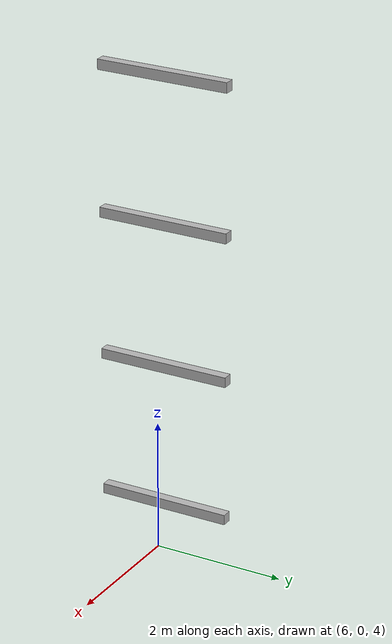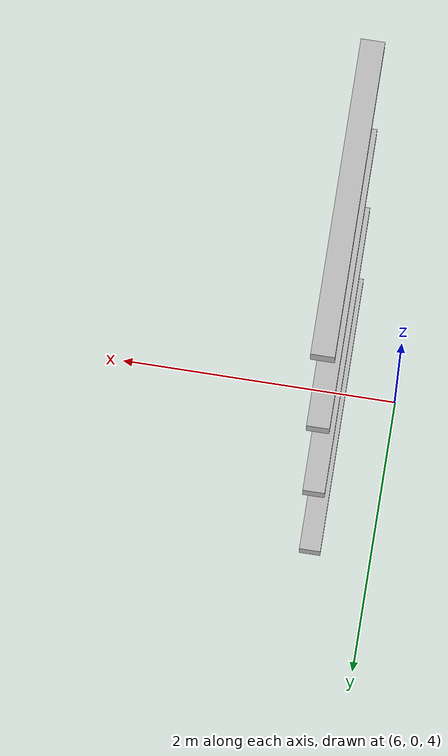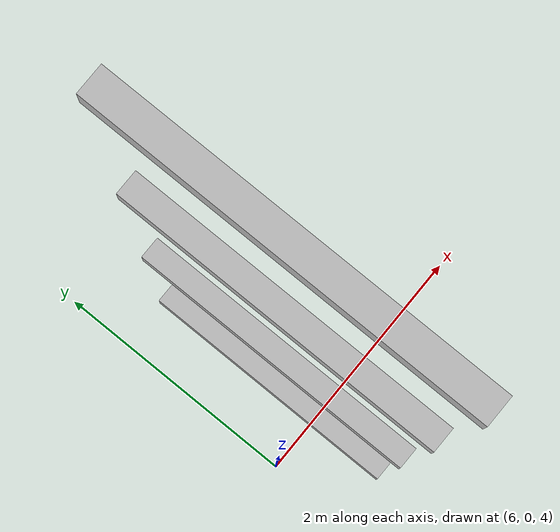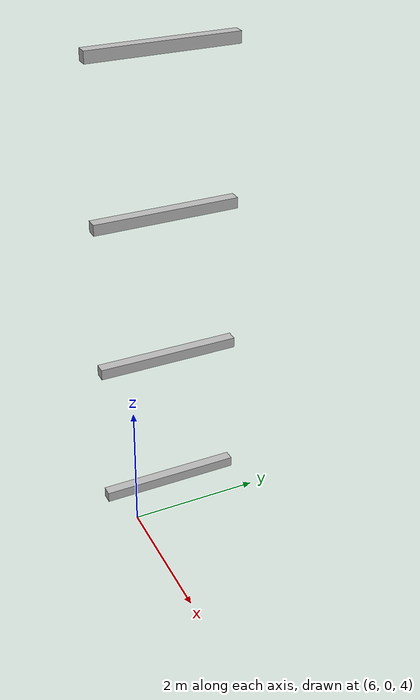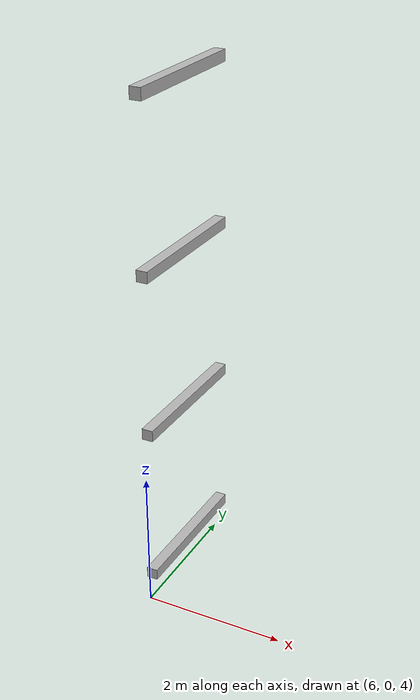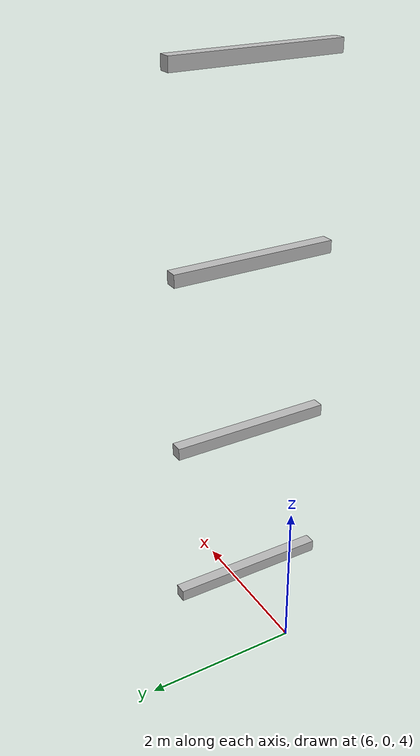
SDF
<sdf version="1.7">
 <world name="default">
  <model name="orthogonal_747_2.000.15_TS">
   <static>1</static>
   <link name="y_link_3_2_6">
    <inertial>
     <mass>1</mass>
     <inertia>
      <ixx>0.166667</ixx>
      <ixy>0</ixy>
      <ixz>0</ixz>
      <iyy>0.166667</iyy>
      <iyz>0</iyz>
      <izz>0.166667</izz>
     </inertia>
    </inertial>
    <pose>12.9 5.375 7.525 0 -0 0</pose>
    <visual name="visual_0">
     <laser_retro>3088</laser_retro>
     <geometry><box><size>0.15 1e-06 0.15</size></box></geometry>
     <material>
      <script><name>Gazebo/Grey</name><uri>file://media/materials/scripts/gazebo.material</uri></script>
      <shader type="pixel"><normal_map>__default__</normal_map></shader>
      <ambient>0.678 0.498 0.659 1</ambient>
      <diffuse>0.7 0.7 0.7 1</diffuse>
      <specular>0.01 0.01 0.01 1</specular>
      <emissive>0 0 0 1</emissive>
     </material>
     <pose>0 -1 0 0 -0 0</pose>
     <transparency>1</transparency>
    </visual>
    <visual name="visual_1">
     <laser_retro>3089</laser_retro>
     <geometry><box><size>0.15 1e-06 0.15</size></box></geometry>
     <material>
      <script><name>Gazebo/Grey</name><uri>file://media/materials/scripts/gazebo.material</uri></script>
      <shader type="pixel"><normal_map>__default__</normal_map></shader>
      <ambient>0.447 0.624 0.812 1</ambient>
      <diffuse>0.7 0.7 0.7 1</diffuse>
      <specular>0.01 0.01 0.01 1</specular>
      <emissive>0 0 0 1</emissive>
     </material>
     <pose>0 1 0 0 -0 0</pose>
     <transparency>1</transparency>
    </visual>
    <visual name="visual_2">
     <laser_retro>3090</laser_retro>
     <geometry><box><size>0.15 2 1e-06</size></box></geometry>
     <material>
      <script><name>Gazebo/Grey</name><uri>file://media/materials/scripts/gazebo.material</uri></script>
      <shader type="pixel"><normal_map>__default__</normal_map></shader>
      <ambient>0.988 0.686 0.243 1</ambient>
      <diffuse>0.7 0.7 0.7 1</diffuse>
      <specular>0.01 0.01 0.01 1</specular>
      <emissive>0 0 0 1</emissive>
     </material>
     <pose>0 0 -0.075 0 -0 0</pose>
     <transparency>1</transparency>
    </visual>
    <visual name="visual_3">
     <laser_retro>3091</laser_retro>
     <geometry><box><size>1e-06 2 0.15</size></box></geometry>
     <material>
      <script><name>Gazebo/Grey</name><uri>file://media/materials/scripts/gazebo.material</uri></script>
      <shader type="pixel"><normal_map>__default__</normal_map></shader>
      <ambient>0.988 0.914 0.31 1</ambient>
      <diffuse>0.7 0.7 0.7 1</diffuse>
      <specular>0.01 0.01 0.01 1</specular>
      <emissive>0 0 0 1</emissive>
     </material>
     <pose>0.075 0 0 0 -0 0</pose>
     <transparency>1</transparency>
    </visual>
    <visual name="visual_4">
     <laser_retro>3092</laser_retro>
     <geometry><box><size>0.15 2 1e-06</size></box></geometry>
     <material>
      <script><name>Gazebo/Grey</name><uri>file://media/materials/scripts/gazebo.material</uri></script>
      <shader type="pixel"><normal_map>__default__</normal_map></shader>
      <ambient>0.937 0.161 0.161 1</ambient>
      <diffuse>0.7 0.7 0.7 1</diffuse>
      <specular>0.01 0.01 0.01 1</specular>
      <emissive>0 0 0 1</emissive>
     </material>
     <pose>0 0 0.075 0 -0 0</pose>
     <transparency>1</transparency>
    </visual>
    <visual name="visual_5">
     <laser_retro>3093</laser_retro>
     <geometry><box><size>1e-06 2 0.15</size></box></geometry>
     <material>
      <script><name>Gazebo/Grey</name><uri>file://media/materials/scripts/gazebo.material</uri></script>
      <shader type="pixel"><normal_map>__default__</normal_map></shader>
      <ambient>0.541 0.886 0.204 1</ambient>
      <diffuse>0.7 0.7 0.7 1</diffuse>
      <specular>0.01 0.01 0.01 1</specular>
      <emissive>0 0 0 1</emissive>
     </material>
     <pose>-0.075 0 0 0 -0 0</pose>
     <transparency>1</transparency>
    </visual>
    <visual name="visual_texture">
     <geometry><box><size>0.149985 1.9998 0.149985</size></box></geometry>
     <material>
      <script>
       <uri>model://BASE_MODELS/simple_block_v2_textured/materials/scripts</uri>
       <uri>model://BASE_MODELS/simple_block_v2_textured/materials/textures</uri>
       <name>metal</name>
      </script>
     </material>
     <laser_retro>3094</laser_retro>
    </visual>
    <collision name="collision">
     <geometry><box><size>0.15 2 0.15</size></box></geometry>
     <surface>
      <friction>
       <ode><mu>1</mu><mu2>1</mu2><fdir1>0 0 0</fdir1><slip1>0</slip1><slip2>0</slip2></ode>
       <torsional>
        <coefficient>1</coefficient>
        <patch_radius>0</patch_radius>
        <surface_radius>0</surface_radius>
        <use_patch_radius>1</use_patch_radius>
        <ode><slip>0</slip></ode>
       </torsional>
      </friction>
      <bounce><restitution_coefficient>0</restitution_coefficient><threshold>1e+06</threshold></bounce>
      <contact>
       <collide_without_contact>0</collide_without_contact>
       <collide_without_contact_bitmask>1</collide_without_contact_bitmask>
       <collide_bitmask>1</collide_bitmask>
       <ode>
        <soft_cfm>0</soft_cfm>
        <soft_erp>0.2</soft_erp>
        <kp>1e+13</kp>
        <kd>1</kd>
        <max_vel>0.01</max_vel>
        <min_depth>0</min_depth>
       </ode>
       <bullet>
        <split_impulse>1</split_impulse>
        <split_impulse_penetration_threshold>-0.01</split_impulse_penetration_threshold>
        <soft_cfm>0</soft_cfm>
        <soft_erp>0.2</soft_erp>
        <kp>1e+13</kp>
        <kd>1</kd>
       </bullet>
      </contact>
     </surface>
    </collision>
   </link>
   <link name="y_link_4_2_6">
    <inertial>
     <mass>1</mass>
     <inertia>
      <ixx>0.166667</ixx>
      <ixy>0</ixy>
      <ixz>0</ixz>
      <iyy>0.166667</iyy>
      <iyz>0</iyz>
      <izz>0.166667</izz>
     </inertia>
    </inertial>
    <pose>12.9 5.375 9.675 0 -0 0</pose>
    <visual name="visual_0">
     <laser_retro>3991</laser_retro>
     <geometry><box><size>0.15 1e-06 0.15</size></box></geometry>
     <material>
      <script><name>Gazebo/Grey</name><uri>file://media/materials/scripts/gazebo.material</uri></script>
      <shader type="pixel"><normal_map>__default__</normal_map></shader>
      <ambient>0.678 0.498 0.659 1</ambient>
      <diffuse>0.7 0.7 0.7 1</diffuse>
      <specular>0.01 0.01 0.01 1</specular>
      <emissive>0 0 0 1</emissive>
     </material>
     <pose>0 -1 0 0 -0 0</pose>
     <transparency>1</transparency>
    </visual>
    <visual name="visual_1">
     <laser_retro>3992</laser_retro>
     <geometry><box><size>0.15 1e-06 0.15</size></box></geometry>
     <material>
      <script><name>Gazebo/Grey</name><uri>file://media/materials/scripts/gazebo.material</uri></script>
      <shader type="pixel"><normal_map>__default__</normal_map></shader>
      <ambient>0.447 0.624 0.812 1</ambient>
      <diffuse>0.7 0.7 0.7 1</diffuse>
      <specular>0.01 0.01 0.01 1</specular>
      <emissive>0 0 0 1</emissive>
     </material>
     <pose>0 1 0 0 -0 0</pose>
     <transparency>1</transparency>
    </visual>
    <visual name="visual_2">
     <laser_retro>3993</laser_retro>
     <geometry><box><size>0.15 2 1e-06</size></box></geometry>
     <material>
      <script><name>Gazebo/Grey</name><uri>file://media/materials/scripts/gazebo.material</uri></script>
      <shader type="pixel"><normal_map>__default__</normal_map></shader>
      <ambient>0.988 0.686 0.243 1</ambient>
      <diffuse>0.7 0.7 0.7 1</diffuse>
      <specular>0.01 0.01 0.01 1</specular>
      <emissive>0 0 0 1</emissive>
     </material>
     <pose>0 0 -0.075 0 -0 0</pose>
     <transparency>1</transparency>
    </visual>
    <visual name="visual_3">
     <laser_retro>3994</laser_retro>
     <geometry><box><size>1e-06 2 0.15</size></box></geometry>
     <material>
      <script><name>Gazebo/Grey</name><uri>file://media/materials/scripts/gazebo.material</uri></script>
      <shader type="pixel"><normal_map>__default__</normal_map></shader>
      <ambient>0.988 0.914 0.31 1</ambient>
      <diffuse>0.7 0.7 0.7 1</diffuse>
      <specular>0.01 0.01 0.01 1</specular>
      <emissive>0 0 0 1</emissive>
     </material>
     <pose>0.075 0 0 0 -0 0</pose>
     <transparency>1</transparency>
    </visual>
    <visual name="visual_4">
     <laser_retro>3995</laser_retro>
     <geometry><box><size>0.15 2 1e-06</size></box></geometry>
     <material>
      <script><name>Gazebo/Grey</name><uri>file://media/materials/scripts/gazebo.material</uri></script>
      <shader type="pixel"><normal_map>__default__</normal_map></shader>
      <ambient>0.937 0.161 0.161 1</ambient>
      <diffuse>0.7 0.7 0.7 1</diffuse>
      <specular>0.01 0.01 0.01 1</specular>
      <emissive>0 0 0 1</emissive>
     </material>
     <pose>0 0 0.075 0 -0 0</pose>
     <transparency>1</transparency>
    </visual>
    <visual name="visual_5">
     <laser_retro>3996</laser_retro>
     <geometry><box><size>1e-06 2 0.15</size></box></geometry>
     <material>
      <script><name>Gazebo/Grey</name><uri>file://media/materials/scripts/gazebo.material</uri></script>
      <shader type="pixel"><normal_map>__default__</normal_map></shader>
      <ambient>0.541 0.886 0.204 1</ambient>
      <diffuse>0.7 0.7 0.7 1</diffuse>
      <specular>0.01 0.01 0.01 1</specular>
      <emissive>0 0 0 1</emissive>
     </material>
     <pose>-0.075 0 0 0 -0 0</pose>
     <transparency>1</transparency>
    </visual>
    <visual name="visual_texture">
     <geometry><box><size>0.149985 1.9998 0.149985</size></box></geometry>
     <material>
      <script>
       <uri>model://BASE_MODELS/simple_block_v2_textured/materials/scripts</uri>
       <uri>model://BASE_MODELS/simple_block_v2_textured/materials/textures</uri>
       <name>metal</name>
      </script>
     </material>
     <laser_retro>3997</laser_retro>
    </visual>
    <collision name="collision">
     <geometry><box><size>0.15 2 0.15</size></box></geometry>
     <surface>
      <friction>
       <ode><mu>1</mu><mu2>1</mu2><fdir1>0 0 0</fdir1><slip1>0</slip1><slip2>0</slip2></ode>
       <torsional>
        <coefficient>1</coefficient>
        <patch_radius>0</patch_radius>
        <surface_radius>0</surface_radius>
        <use_patch_radius>1</use_patch_radius>
        <ode><slip>0</slip></ode>
       </torsional>
      </friction>
      <bounce><restitution_coefficient>0</restitution_coefficient><threshold>1e+06</threshold></bounce>
      <contact>
       <collide_without_contact>0</collide_without_contact>
       <collide_without_contact_bitmask>1</collide_without_contact_bitmask>
       <collide_bitmask>1</collide_bitmask>
       <ode>
        <soft_cfm>0</soft_cfm>
        <soft_erp>0.2</soft_erp>
        <kp>1e+13</kp>
        <kd>1</kd>
        <max_vel>0.01</max_vel>
        <min_depth>0</min_depth>
       </ode>
       <bullet>
        <split_impulse>1</split_impulse>
        <split_impulse_penetration_threshold>-0.01</split_impulse_penetration_threshold>
        <soft_cfm>0</soft_cfm>
        <soft_erp>0.2</soft_erp>
        <kp>1e+13</kp>
        <kd>1</kd>
       </bullet>
      </contact>
     </surface>
    </collision>
   </link>
   <link name="y_link_5_2_6">
    <inertial>
     <mass>1</mass>
     <inertia>
      <ixx>0.166667</ixx>
      <ixy>0</ixy>
      <ixz>0</ixz>
      <iyy>0.166667</iyy>
      <iyz>0</iyz>
      <izz>0.166667</izz>
     </inertia>
    </inertial>
    <pose>12.9 5.375 11.825 0 -0 0</pose>
    <visual name="visual_0">
     <laser_retro>4894</laser_retro>
     <geometry><box><size>0.15 1e-06 0.15</size></box></geometry>
     <material>
      <script><name>Gazebo/Grey</name><uri>file://media/materials/scripts/gazebo.material</uri></script>
      <shader type="pixel"><normal_map>__default__</normal_map></shader>
      <ambient>0.678 0.498 0.659 1</ambient>
      <diffuse>0.7 0.7 0.7 1</diffuse>
      <specular>0.01 0.01 0.01 1</specular>
      <emissive>0 0 0 1</emissive>
     </material>
     <pose>0 -1 0 0 -0 0</pose>
     <transparency>1</transparency>
    </visual>
    <visual name="visual_1">
     <laser_retro>4895</laser_retro>
     <geometry><box><size>0.15 1e-06 0.15</size></box></geometry>
     <material>
      <script><name>Gazebo/Grey</name><uri>file://media/materials/scripts/gazebo.material</uri></script>
      <shader type="pixel"><normal_map>__default__</normal_map></shader>
      <ambient>0.447 0.624 0.812 1</ambient>
      <diffuse>0.7 0.7 0.7 1</diffuse>
      <specular>0.01 0.01 0.01 1</specular>
      <emissive>0 0 0 1</emissive>
     </material>
     <pose>0 1 0 0 -0 0</pose>
     <transparency>1</transparency>
    </visual>
    <visual name="visual_2">
     <laser_retro>4896</laser_retro>
     <geometry><box><size>0.15 2 1e-06</size></box></geometry>
     <material>
      <script><name>Gazebo/Grey</name><uri>file://media/materials/scripts/gazebo.material</uri></script>
      <shader type="pixel"><normal_map>__default__</normal_map></shader>
      <ambient>0.988 0.686 0.243 1</ambient>
      <diffuse>0.7 0.7 0.7 1</diffuse>
      <specular>0.01 0.01 0.01 1</specular>
      <emissive>0 0 0 1</emissive>
     </material>
     <pose>0 0 -0.075 0 -0 0</pose>
     <transparency>1</transparency>
    </visual>
    <visual name="visual_3">
     <laser_retro>4897</laser_retro>
     <geometry><box><size>1e-06 2 0.15</size></box></geometry>
     <material>
      <script><name>Gazebo/Grey</name><uri>file://media/materials/scripts/gazebo.material</uri></script>
      <shader type="pixel"><normal_map>__default__</normal_map></shader>
      <ambient>0.988 0.914 0.31 1</ambient>
      <diffuse>0.7 0.7 0.7 1</diffuse>
      <specular>0.01 0.01 0.01 1</specular>
      <emissive>0 0 0 1</emissive>
     </material>
     <pose>0.075 0 0 0 -0 0</pose>
     <transparency>1</transparency>
    </visual>
    <visual name="visual_4">
     <laser_retro>4898</laser_retro>
     <geometry><box><size>0.15 2 1e-06</size></box></geometry>
     <material>
      <script><name>Gazebo/Grey</name><uri>file://media/materials/scripts/gazebo.material</uri></script>
      <shader type="pixel"><normal_map>__default__</normal_map></shader>
      <ambient>0.937 0.161 0.161 1</ambient>
      <diffuse>0.7 0.7 0.7 1</diffuse>
      <specular>0.01 0.01 0.01 1</specular>
      <emissive>0 0 0 1</emissive>
     </material>
     <pose>0 0 0.075 0 -0 0</pose>
     <transparency>1</transparency>
    </visual>
    <visual name="visual_5">
     <laser_retro>4899</laser_retro>
     <geometry><box><size>1e-06 2 0.15</size></box></geometry>
     <material>
      <script><name>Gazebo/Grey</name><uri>file://media/materials/scripts/gazebo.material</uri></script>
      <shader type="pixel"><normal_map>__default__</normal_map></shader>
      <ambient>0.541 0.886 0.204 1</ambient>
      <diffuse>0.7 0.7 0.7 1</diffuse>
      <specular>0.01 0.01 0.01 1</specular>
      <emissive>0 0 0 1</emissive>
     </material>
     <pose>-0.075 0 0 0 -0 0</pose>
     <transparency>1</transparency>
    </visual>
    <visual name="visual_texture">
     <geometry><box><size>0.149985 1.9998 0.149985</size></box></geometry>
     <material>
      <script>
       <uri>model://BASE_MODELS/simple_block_v2_textured/materials/scripts</uri>
       <uri>model://BASE_MODELS/simple_block_v2_textured/materials/textures</uri>
       <name>metal</name>
      </script>
     </material>
     <laser_retro>4900</laser_retro>
    </visual>
    <collision name="collision">
     <geometry><box><size>0.15 2 0.15</size></box></geometry>
     <surface>
      <friction>
       <ode><mu>1</mu><mu2>1</mu2><fdir1>0 0 0</fdir1><slip1>0</slip1><slip2>0</slip2></ode>
       <torsional>
        <coefficient>1</coefficient>
        <patch_radius>0</patch_radius>
        <surface_radius>0</surface_radius>
        <use_patch_radius>1</use_patch_radius>
        <ode><slip>0</slip></ode>
       </torsional>
      </friction>
      <bounce><restitution_coefficient>0</restitution_coefficient><threshold>1e+06</threshold></bounce>
      <contact>
       <collide_without_contact>0</collide_without_contact>
       <collide_without_contact_bitmask>1</collide_without_contact_bitmask>
       <collide_bitmask>1</collide_bitmask>
       <ode>
        <soft_cfm>0</soft_cfm>
        <soft_erp>0.2</soft_erp>
        <kp>1e+13</kp>
        <kd>1</kd>
        <max_vel>0.01</max_vel>
        <min_depth>0</min_depth>
       </ode>
       <bullet>
        <split_impulse>1</split_impulse>
        <split_impulse_penetration_threshold>-0.01</split_impulse_penetration_threshold>
        <soft_cfm>0</soft_cfm>
        <soft_erp>0.2</soft_erp>
        <kp>1e+13</kp>
        <kd>1</kd>
       </bullet>
      </contact>
     </surface>
    </collision>
   </link>
   <link name="y_link_6_2_6">
    <inertial>
     <mass>1</mass>
     <inertia>
      <ixx>0.166667</ixx>
      <ixy>0</ixy>
      <ixz>0</ixz>
      <iyy>0.166667</iyy>
      <iyz>0</iyz>
      <izz>0.166667</izz>
     </inertia>
    </inertial>
    <pose>12.9 5.375 13.975 0 -0 0</pose>
    <visual name="visual_0">
     <laser_retro>5874</laser_retro>
     <geometry><box><size>0.15 1e-06 0.15</size></box></geometry>
     <material>
      <script><name>Gazebo/Grey</name><uri>file://media/materials/scripts/gazebo.material</uri></script>
      <shader type="pixel"><normal_map>__default__</normal_map></shader>
      <ambient>0.678 0.498 0.659 1</ambient>
      <diffuse>0.7 0.7 0.7 1</diffuse>
      <specular>0.01 0.01 0.01 1</specular>
      <emissive>0 0 0 1</emissive>
     </material>
     <pose>0 -1 0 0 -0 0</pose>
     <transparency>1</transparency>
    </visual>
    <visual name="visual_1">
     <laser_retro>5875</laser_retro>
     <geometry><box><size>0.15 1e-06 0.15</size></box></geometry>
     <material>
      <script><name>Gazebo/Grey</name><uri>file://media/materials/scripts/gazebo.material</uri></script>
      <shader type="pixel"><normal_map>__default__</normal_map></shader>
      <ambient>0.447 0.624 0.812 1</ambient>
      <diffuse>0.7 0.7 0.7 1</diffuse>
      <specular>0.01 0.01 0.01 1</specular>
      <emissive>0 0 0 1</emissive>
     </material>
     <pose>0 1 0 0 -0 0</pose>
     <transparency>1</transparency>
    </visual>
    <visual name="visual_2">
     <laser_retro>5876</laser_retro>
     <geometry><box><size>0.15 2 1e-06</size></box></geometry>
     <material>
      <script><name>Gazebo/Grey</name><uri>file://media/materials/scripts/gazebo.material</uri></script>
      <shader type="pixel"><normal_map>__default__</normal_map></shader>
      <ambient>0.988 0.686 0.243 1</ambient>
      <diffuse>0.7 0.7 0.7 1</diffuse>
      <specular>0.01 0.01 0.01 1</specular>
      <emissive>0 0 0 1</emissive>
     </material>
     <pose>0 0 -0.075 0 -0 0</pose>
     <transparency>1</transparency>
    </visual>
    <visual name="visual_3">
     <laser_retro>5877</laser_retro>
     <geometry><box><size>1e-06 2 0.15</size></box></geometry>
     <material>
      <script><name>Gazebo/Grey</name><uri>file://media/materials/scripts/gazebo.material</uri></script>
      <shader type="pixel"><normal_map>__default__</normal_map></shader>
      <ambient>0.988 0.914 0.31 1</ambient>
      <diffuse>0.7 0.7 0.7 1</diffuse>
      <specular>0.01 0.01 0.01 1</specular>
      <emissive>0 0 0 1</emissive>
     </material>
     <pose>0.075 0 0 0 -0 0</pose>
     <transparency>1</transparency>
    </visual>
    <visual name="visual_4">
     <laser_retro>5878</laser_retro>
     <geometry><box><size>0.15 2 1e-06</size></box></geometry>
     <material>
      <script><name>Gazebo/Grey</name><uri>file://media/materials/scripts/gazebo.material</uri></script>
      <shader type="pixel"><normal_map>__default__</normal_map></shader>
      <ambient>0.937 0.161 0.161 1</ambient>
      <diffuse>0.7 0.7 0.7 1</diffuse>
      <specular>0.01 0.01 0.01 1</specular>
      <emissive>0 0 0 1</emissive>
     </material>
     <pose>0 0 0.075 0 -0 0</pose>
     <transparency>1</transparency>
    </visual>
    <visual name="visual_5">
     <laser_retro>5879</laser_retro>
     <geometry><box><size>1e-06 2 0.15</size></box></geometry>
     <material>
      <script><name>Gazebo/Grey</name><uri>file://media/materials/scripts/gazebo.material</uri></script>
      <shader type="pixel"><normal_map>__default__</normal_map></shader>
      <ambient>0.541 0.886 0.204 1</ambient>
      <diffuse>0.7 0.7 0.7 1</diffuse>
      <specular>0.01 0.01 0.01 1</specular>
      <emissive>0 0 0 1</emissive>
     </material>
     <pose>-0.075 0 0 0 -0 0</pose>
     <transparency>1</transparency>
    </visual>
    <visual name="visual_texture">
     <geometry><box><size>0.149985 1.9998 0.149985</size></box></geometry>
     <material>
      <script>
       <uri>model://BASE_MODELS/simple_block_v2_textured/materials/scripts</uri>
       <uri>model://BASE_MODELS/simple_block_v2_textured/materials/textures</uri>
       <name>metal</name>
      </script>
     </material>
     <laser_retro>5880</laser_retro>
    </visual>
    <collision name="collision">
     <geometry><box><size>0.15 2 0.15</size></box></geometry>
     <surface>
      <friction>
       <ode><mu>1</mu><mu2>1</mu2><fdir1>0 0 0</fdir1><slip1>0</slip1><slip2>0</slip2></ode>
       <torsional>
        <coefficient>1</coefficient>
        <patch_radius>0</patch_radius>
        <surface_radius>0</surface_radius>
        <use_patch_radius>1</use_patch_radius>
        <ode><slip>0</slip></ode>
       </torsional>
      </friction>
      <bounce><restitution_coefficient>0</restitution_coefficient><threshold>1e+06</threshold></bounce>
      <contact>
       <collide_without_contact>0</collide_without_contact>
       <collide_without_contact_bitmask>1</collide_without_contact_bitmask>
       <collide_bitmask>1</collide_bitmask>
       <ode>
        <soft_cfm>0</soft_cfm>
        <soft_erp>0.2</soft_erp>
        <kp>1e+13</kp>
        <kd>1</kd>
        <max_vel>0.01</max_vel>
        <min_depth>0</min_depth>
       </ode>
       <bullet>
        <split_impulse>1</split_impulse>
        <split_impulse_penetration_threshold>-0.01</split_impulse_penetration_threshold>
        <soft_cfm>0</soft_cfm>
        <soft_erp>0.2</soft_erp>
        <kp>1e+13</kp>
        <kd>1</kd>
       </bullet>
      </contact>
     </surface>
    </collision>
   </link>
   <pose>-6.47624 -5 -2.5 0 -0 0</pose>
  </model>
 </world>
</sdf>
